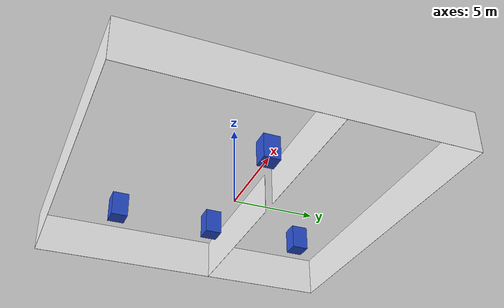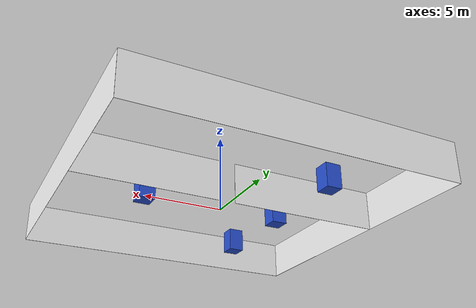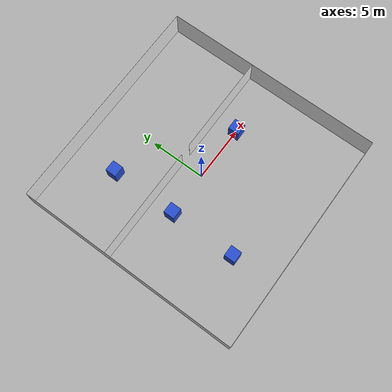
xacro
<?xml version="1.0"?>

<robot name="demo-1">

	<!-- dummy_link -->
	<link name="dummy_link">
		<inertial>
			<origin xyz="0 0 0" />
			<mass value="5.0" />
			<inertia ixx="0.0" ixy="0.0" ixz="0.0" iyy="0.0" iyz="0.0" izz="0.0" />
		</inertial>
		<visual>
			<origin xyz="0 0 0" />
			<geometry>
				<box size="0.00 0.00 0.00" />
			</geometry>
		</visual>
		<collision>
			<origin xyz="0 0 0" />
			<geometry>
				<box size="0.00 0.00 0.00" />
			</geometry>
		</collision>
	</link>

<!-- walls -->

	<!-- north_wall -->
	<link name="north_wall">
		<inertial>
			<origin xyz="0 0 0" />
			<mass value="5.0" />
			<inertia ixx="0.0" ixy="0.0" ixz="0.0" iyy="0.0" iyz="0.0" izz="0.0" />
		</inertial>
		<visual>
			<origin xyz="0 0 0" />
			<geometry>
				<box size="20 0.01 2.60" />
			</geometry>
		</visual>
		<collision>
			<origin xyz="0 0 0" />
			<geometry>
				<box size="20.02 0.03 2.62" />
			</geometry>
		</collision>
	</link>

	<joint name="joint_north_wall" type="fixed">
		<origin xyz="0 10 1" rpy="0 0 0" />
		<parent link="dummy_link" />
		<child link="north_wall" />
	</joint>

	<!-- east_wall -->
	<link name="east_wall">
		<inertial>
			<origin xyz="0 0 0" />
			<mass value="5.0" />
			<inertia ixx="0.0" ixy="0.0" ixz="0.0" iyy="0.0" iyz="0.0" izz="0.0" />
		</inertial>
		<visual>
			<origin xyz="0 0 0" />
			<geometry>
				<box size="0.01 20 2.60" />
			</geometry>
		</visual>
		<collision>
			<origin xyz="0 0 0" />
			<geometry>
				<box size="0.03 20.02 2.62" />
			</geometry>
		</collision>
	</link>

	<joint name="joint_east_wall" type="fixed">
		<origin xyz="10 0 1" rpy="0 0 0" />
		<parent link="dummy_link" />
		<child link="east_wall" />
	</joint>

	<!-- south_wall -->
	<link name="south_wall">
		<inertial>
			<origin xyz="0 0 0" />
			<mass value="5.0" />
			<inertia ixx="0.0" ixy="0.0" ixz="0.0" iyy="0.0" iyz="0.0" izz="0.0" />
		</inertial>
		<visual>
			<origin xyz="0 0 0" />
			<geometry>
				<box size="20 0.01 2.60" />
			</geometry>
		</visual>
		<collision>
			<origin xyz="0 0 0" />
			<geometry>
				<box size="20.2 0.03 2.62" />
			</geometry>
		</collision>
	</link>

	<joint name="joint_south_wall" type="fixed">
		<origin xyz="0 -10 1" rpy="0 0 0" />
		<parent link="dummy_link" />
		<child link="south_wall" />
	</joint>

	<!-- west_wall -->
	<link name="west_wall">
		<inertial>
			<origin xyz="0 0 0" />
			<mass value="5.0" />
			<inertia ixx="0.0" ixy="0.0" ixz="0.0" iyy="0.0" iyz="0.0" izz="0.0" />
		</inertial>
		<visual>
			<origin xyz="0 0 0" />
			<geometry>
				<box size="0.01 20 2.60" />
			</geometry>
		</visual>
		<collision>
			<origin xyz="0 0 0" />
			<geometry>
				<box size="0.03 20.02 2.62" />
			</geometry>
		</collision>
	</link>

	<joint name="joint_west_wall" type="fixed">
		<origin xyz="-10 0 1" rpy="0 0 0" />
		<parent link="dummy_link" />
		<child link="west_wall" />
	</joint>

        <!-- center_wall_one -->
	<link name="center_wall_one">
		<inertial>
			<origin xyz="0 0 0" />
			<mass value="5.0" />
			<inertia ixx="0.0" ixy="0.0" ixz="0.0" iyy="0.0" iyz="0.0" izz="0.0" />
		</inertial>
		<visual>
			<origin xyz="0 0 0" />
			<geometry>
				<box size="10 0.01 2.60" />
			</geometry>
		</visual>
		<collision>
			<origin xyz="0 0 0" />
			<geometry>
				<box size="10.02 0.03 2.62" />
			</geometry>
		</collision>
	</link>

	<joint name="joint_center_wall_one" type="fixed">
		<origin xyz="-5 2 1" rpy="0 0 0" />
		<parent link="dummy_link" />
		<child link="center_wall_one" />
	</joint>

        <!-- center_wall_two -->
	<link name="center_wall_two">
		<inertial>
			<origin xyz="0 0 0" />
			<mass value="5.0" />
			<inertia ixx="0.0" ixy="0.0" ixz="0.0" iyy="0.0" iyz="0.0" izz="0.0" />
		</inertial>
		<visual>
			<origin xyz="0 0 0" />
			<geometry>
				<box size="9 0.01 2.60" />
			</geometry>
		</visual>
		<collision>
			<origin xyz="0 0 0" />
			<geometry>
				<box size="9.02 0.03 2.62" />
			</geometry>
		</collision>
	</link>

	<joint name="joint_center_wall_two" type="fixed">
		<origin xyz="5.5 2 1" rpy="0 0 0" />
		<parent link="dummy_link" />
		<child link="center_wall_two" />
	</joint>

<!-- Objects -->
	<!-- object_1 -->
	<link name="object_1">
		<inertial>
			<origin xyz="-4 6 0" />
			<mass value="5.0" />
			<inertia ixx="0.0" ixy="0.0" ixz="0.0" iyy="0.0" iyz="0.0" izz="0.0" />
		</inertial>
		<visual>
			<origin xyz="-4 6 0" />
			<geometry>
				<box size="1 1 1.5" />
			</geometry>
		</visual>
		<collision>
			<origin xyz="-4 6 0" />
			<geometry>
				<box size="1.02 1.02 1.52" />
			</geometry>
		</collision>
	</link>

	<gazebo reference="object_1">
	</gazebo>

	<joint name="joint_object_1" type="fixed">
		<origin xyz="0 0 0.45" rpy="0 0 0" />
		<parent link="dummy_link" />
		<child link="object_1" />
	</joint>

	<!-- object_2 -->
	<link name="object_2">
		<inertial>
			<origin xyz="-4 0 0" />
			<mass value="5.0" />
			<inertia ixx="0.0" ixy="0.0" ixz="0.0" iyy="0.0" iyz="0.0" izz="0.0" />
		</inertial>
		<visual>
			<origin xyz="-4 0 0" />
			<geometry>
				<box size="1 1 1.5" />
			</geometry>
		</visual>
		<collision>
			<origin xyz="-4 0 0" />
			<geometry>
				<box size="1.02 1.02 1.52" />
			</geometry>
		</collision>
	</link>

	<joint name="joint_object_2" type="fixed">
		<origin xyz="0 0 0.45" rpy="0 0 0" />
		<parent link="dummy_link" />
		<child link="object_2" />
	</joint>

	<!-- object_3 -->
	<link name="object_3">
		<inertial>
			<origin xyz="5 0 0" />
			<mass value="5.0" />
			<inertia ixx="0.0" ixy="0.0" ixz="0.0" iyy="0.0" iyz="0.0" izz="0.0" />
		</inertial>
		<visual>
			<origin xyz="5 0 0" />
			<geometry>
				<box size="1 1 1.5" />
			</geometry>
		</visual>
		<collision>
			<origin xyz="5 0 0" />
			<geometry>
				<box size="1.02 1.02 1.52" />
			</geometry>
		</collision>
	</link>

	<joint name="joint_object_3" type="fixed">
		<origin xyz="0 0 0.45" rpy="0 0 0" />
		<parent link="dummy_link" />
		<child link="object_3" />
	</joint>

        <!-- object_4 -->
	<link name="object_4">
		<inertial>
			<origin xyz="-4 -6 0" />
			<mass value="5.0" />
			<inertia ixx="0.0" ixy="0.0" ixz="0.0" iyy="0.0" iyz="0.0" izz="0.0" />
		</inertial>
		<visual>
			<origin xyz="-4 -6 0" />
			<geometry>
				<box size="1 1 1.5" />
			</geometry>
		</visual>
		<collision>
			<origin xyz="-4 -6 0" />
			<geometry>
				<box size="1.02 1.02 1.52" />
			</geometry>
		</collision>
	</link>
	<joint name="joint_object_4" type="fixed">
		<origin xyz="0 0 0.45" rpy="0 0 0" />
		<parent link="dummy_link" />
		<child link="object_4" />
	</joint>

 <gazebo reference="north_wall">
	<material>Gazebo/White</material>
	<selfCollide>false</selfCollide>
 </gazebo>
 <gazebo reference="south_wall">
	<material>Gazebo/White</material>
	<selfCollide>false</selfCollide>
 </gazebo>
 <gazebo reference="east_wall">
	<material>Gazebo/White</material>
	<selfCollide>false</selfCollide>
 </gazebo>
 <gazebo reference="west_wall">
	<material>Gazebo/White</material>
	<selfCollide>false</selfCollide>
 </gazebo>
 <gazebo reference="center_wall_one">
	<material>Gazebo/White</material>
	<selfCollide>false</selfCollide>
 </gazebo>
 <gazebo reference="center_wall_two">
	<material>Gazebo/White</material>
	<selfCollide>false</selfCollide>
 </gazebo>
 <gazebo reference="object_1">
	<material>Gazebo/Blue</material>
	<selfCollide>false</selfCollide>
 </gazebo>
 <gazebo reference="object_2">
	<material>Gazebo/Blue</material>
	<selfCollide>false</selfCollide>
 </gazebo>
 <gazebo reference="object_3">
	<material>Gazebo/Blue</material>
	<selfCollide>false</selfCollide>
 </gazebo>

 <gazebo reference="object_4">
	<material>Gazebo/Blue</material>
	<selfCollide>false</selfCollide>
 </gazebo>

</robot>
